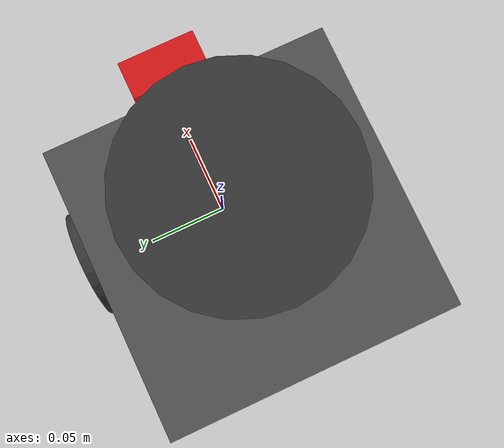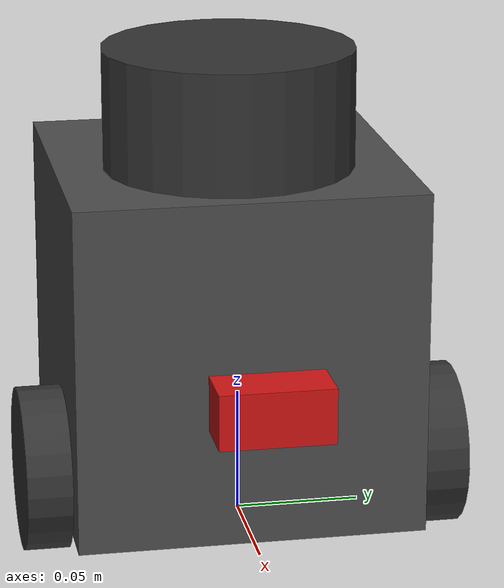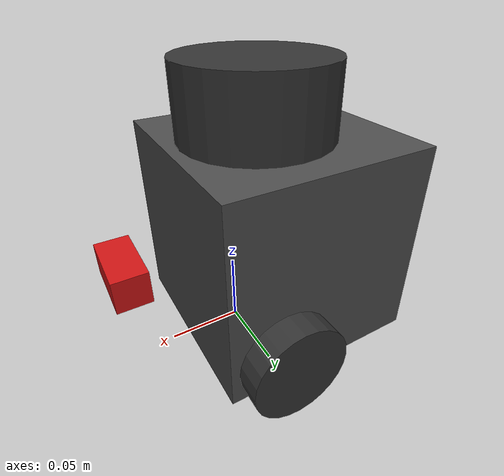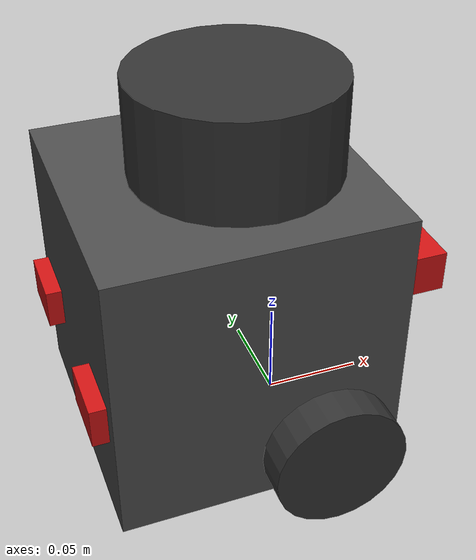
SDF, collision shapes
<?xml version="1.0" ?>
<sdf version="1.7">
  <model name="turtlebot3_burger_ir">
    <pose>0.0 0.0 0.0 0.0 0.0 0.0</pose>

    <link name="base_footprint"/>

    <link name="base_link">

      <inertial>
        <pose>-0.064 0 0.070 0 0 0</pose>
        <inertia>
          <ixx>1.9527e-02</ixx>
          <ixy>0</ixy>
          <ixz>0</ixz>
          <iyy>1.9527e-02</iyy>
          <iyz>0</iyz>
          <izz>1.9527e-02</izz>
        </inertia>
        <mass>8.2573504e-01</mass>
      </inertial>

      <collision name="base_collision">
        <pose>-0.032 0 0.070 0 0 0</pose>
        <geometry>
          <box>
            <size>0.14 0.14 0.14</size>
          </box>
        </geometry>
      </collision>

      <visual name="base_visual">
        <pose>-0.032 0 0 0 0 0</pose>
        <geometry>
          <mesh>
            <uri>model://turtlebot3_common/meshes/bases/burger_base.stl</uri>
            <scale>0.001 0.001 0.001</scale>
          </mesh>
        </geometry>
        <material>
          <ambient>0.3 0.3 0.3 1.0</ambient>
          <diffuse>0.3 0.3 0.3 1.0</diffuse>
        </material>
      </visual>

      <visual name="visibility_shell">
        <pose>-0.010 0 0.275 0 0 0</pose>
        <geometry>
          <cylinder>
            <radius>0.225</radius>
            <length>0.510</length>
          </cylinder>
        </geometry>
        <material>
          <ambient>0.88 0.30 0.08 1.0</ambient>
          <diffuse>0.95 0.38 0.10 1.0</diffuse>
          <specular>0.15 0.15 0.15 1.0</specular>
        </material>
      </visual>

      <visual name="top_marker">
        <pose>0.030 0 0.605 0 0 0</pose>
        <geometry>
          <box>
            <size>0.25 0.18 0.11</size>
          </box>
        </geometry>
        <material>
          <ambient>0.08 0.16 0.85 1.0</ambient>
          <diffuse>0.12 0.22 0.95 1.0</diffuse>
          <specular>0.10 0.10 0.10 1.0</specular>
        </material>
      </visual>

      <visual name="head_marker">
        <pose>0.030 0 0.780 0 0 0</pose>
        <geometry>
          <cylinder>
            <radius>0.140</radius>
            <length>0.140</length>
          </cylinder>
        </geometry>
        <material>
          <ambient>0.92 0.92 0.94 1.0</ambient>
          <diffuse>0.96 0.96 0.98 1.0</diffuse>
          <specular>0.18 0.18 0.18 1.0</specular>
        </material>
      </visual>

      <visual name="led_seg_00">
        <pose>0.205000 0.000000 0.865000 0 0 1.570796</pose>
        <geometry>
          <box>
            <size>0.034 0.015 0.012</size>
          </box>
        </geometry>
        <material>
          <ambient>0.010 0.010 0.010 1.0</ambient>
          <diffuse>0.018 0.018 0.018 1.0</diffuse>
          <emissive>0.000 0.000 0.000 1.0</emissive>
          <specular>0.020 0.020 0.020 1.0</specular>
        </material>
      </visual>
      <visual name="led_seg_01">
        <pose>0.199502 0.032330 0.865000 0 0 1.822124</pose>
        <geometry>
          <box>
            <size>0.034 0.015 0.012</size>
          </box>
        </geometry>
        <material>
          <ambient>0.010 0.010 0.010 1.0</ambient>
          <diffuse>0.018 0.018 0.018 1.0</diffuse>
          <emissive>0.000 0.000 0.000 1.0</emissive>
          <specular>0.020 0.020 0.020 1.0</specular>
        </material>
      </visual>
      <visual name="led_seg_02">
        <pose>0.183354 0.062628 0.865000 0 0 2.073451</pose>
        <geometry>
          <box>
            <size>0.034 0.015 0.012</size>
          </box>
        </geometry>
        <material>
          <ambient>0.010 0.010 0.010 1.0</ambient>
          <diffuse>0.018 0.018 0.018 1.0</diffuse>
          <emissive>0.000 0.000 0.000 1.0</emissive>
          <specular>0.020 0.020 0.020 1.0</specular>
        </material>
      </visual>
      <visual name="led_seg_03">
        <pose>0.157570 0.088991 0.865000 0 0 2.324779</pose>
        <geometry>
          <box>
            <size>0.034 0.015 0.012</size>
          </box>
        </geometry>
        <material>
          <ambient>0.010 0.010 0.010 1.0</ambient>
          <diffuse>0.018 0.018 0.018 1.0</diffuse>
          <emissive>0.000 0.000 0.000 1.0</emissive>
          <specular>0.020 0.020 0.020 1.0</specular>
        </material>
      </visual>
      <visual name="led_seg_04">
        <pose>0.123770 0.109763 0.865000 0 0 2.576106</pose>
        <geometry>
          <box>
            <size>0.034 0.015 0.012</size>
          </box>
        </geometry>
        <material>
          <ambient>0.010 0.010 0.010 1.0</ambient>
          <diffuse>0.018 0.018 0.018 1.0</diffuse>
          <emissive>0.000 0.000 0.000 1.0</emissive>
          <specular>0.020 0.020 0.020 1.0</specular>
        </material>
      </visual>
      <visual name="led_seg_05">
        <pose>0.084078 0.123637 0.865000 0 0 2.827433</pose>
        <geometry>
          <box>
            <size>0.034 0.015 0.012</size>
          </box>
        </geometry>
        <material>
          <ambient>0.010 0.010 0.010 1.0</ambient>
          <diffuse>0.018 0.018 0.018 1.0</diffuse>
          <emissive>0.000 0.000 0.000 1.0</emissive>
          <specular>0.020 0.020 0.020 1.0</specular>
        </material>
      </visual>
      <visual name="led_seg_06">
        <pose>0.040988 0.129743 0.865000 0 0 3.078761</pose>
        <geometry>
          <box>
            <size>0.034 0.015 0.012</size>
          </box>
        </geometry>
        <material>
          <ambient>0.010 0.010 0.010 1.0</ambient>
          <diffuse>0.018 0.018 0.018 1.0</diffuse>
          <emissive>0.000 0.000 0.000 1.0</emissive>
          <specular>0.020 0.020 0.020 1.0</specular>
        </material>
      </visual>
      <visual name="led_seg_07">
        <pose>-0.002792 0.127697 0.865000 0 0 3.330088</pose>
        <geometry>
          <box>
            <size>0.034 0.015 0.012</size>
          </box>
        </geometry>
        <material>
          <ambient>0.010 0.010 0.010 1.0</ambient>
          <diffuse>0.018 0.018 0.018 1.0</diffuse>
          <emissive>0.000 0.000 0.000 1.0</emissive>
          <specular>0.020 0.020 0.020 1.0</specular>
        </material>
      </visual>
      <visual name="led_seg_08">
        <pose>-0.044511 0.117628 0.865000 0 0 3.581416</pose>
        <geometry>
          <box>
            <size>0.034 0.015 0.012</size>
          </box>
        </geometry>
        <material>
          <ambient>0.010 0.010 0.010 1.0</ambient>
          <diffuse>0.018 0.018 0.018 1.0</diffuse>
          <emissive>0.000 0.000 0.000 1.0</emissive>
          <specular>0.020 0.020 0.020 1.0</specular>
        </material>
      </visual>
      <visual name="led_seg_09">
        <pose>-0.081549 0.100167 0.865000 0 0 3.832743</pose>
        <geometry>
          <box>
            <size>0.034 0.015 0.012</size>
          </box>
        </geometry>
        <material>
          <ambient>0.010 0.010 0.010 1.0</ambient>
          <diffuse>0.018 0.018 0.018 1.0</diffuse>
          <emissive>0.000 0.000 0.000 1.0</emissive>
          <specular>0.020 0.020 0.020 1.0</specular>
        </material>
      </visual>
      <visual name="led_seg_10">
        <pose>-0.111578 0.076412 0.865000 0 0 4.084070</pose>
        <geometry>
          <box>
            <size>0.034 0.015 0.012</size>
          </box>
        </geometry>
        <material>
          <ambient>0.010 0.010 0.010 1.0</ambient>
          <diffuse>0.018 0.018 0.018 1.0</diffuse>
          <emissive>0.000 0.000 0.000 1.0</emissive>
          <specular>0.020 0.020 0.020 1.0</specular>
        </material>
      </visual>
      <visual name="led_seg_11">
        <pose>-0.132711 0.047856 0.865000 0 0 4.335398</pose>
        <geometry>
          <box>
            <size>0.034 0.015 0.012</size>
          </box>
        </geometry>
        <material>
          <ambient>0.010 0.010 0.010 1.0</ambient>
          <diffuse>0.018 0.018 0.018 1.0</diffuse>
          <emissive>0.000 0.000 0.000 1.0</emissive>
          <specular>0.020 0.020 0.020 1.0</specular>
        </material>
      </visual>
      <visual name="led_seg_12">
        <pose>-0.143620 0.016293 0.865000 0 0 4.586725</pose>
        <geometry>
          <box>
            <size>0.034 0.015 0.012</size>
          </box>
        </geometry>
        <material>
          <ambient>0.010 0.010 0.010 1.0</ambient>
          <diffuse>0.018 0.018 0.018 1.0</diffuse>
          <emissive>0.000 0.000 0.000 1.0</emissive>
          <specular>0.020 0.020 0.020 1.0</specular>
        </material>
      </visual>
      <visual name="led_seg_13">
        <pose>-0.143620 -0.016293 0.865000 0 0 4.838053</pose>
        <geometry>
          <box>
            <size>0.034 0.015 0.012</size>
          </box>
        </geometry>
        <material>
          <ambient>0.010 0.010 0.010 1.0</ambient>
          <diffuse>0.018 0.018 0.018 1.0</diffuse>
          <emissive>0.000 0.000 0.000 1.0</emissive>
          <specular>0.020 0.020 0.020 1.0</specular>
        </material>
      </visual>
      <visual name="led_seg_14">
        <pose>-0.132711 -0.047856 0.865000 0 0 5.089380</pose>
        <geometry>
          <box>
            <size>0.034 0.015 0.012</size>
          </box>
        </geometry>
        <material>
          <ambient>0.010 0.010 0.010 1.0</ambient>
          <diffuse>0.018 0.018 0.018 1.0</diffuse>
          <emissive>0.000 0.000 0.000 1.0</emissive>
          <specular>0.020 0.020 0.020 1.0</specular>
        </material>
      </visual>
      <visual name="led_seg_15">
        <pose>-0.111578 -0.076412 0.865000 0 0 5.340708</pose>
        <geometry>
          <box>
            <size>0.034 0.015 0.012</size>
          </box>
        </geometry>
        <material>
          <ambient>0.010 0.010 0.010 1.0</ambient>
          <diffuse>0.018 0.018 0.018 1.0</diffuse>
          <emissive>0.000 0.000 0.000 1.0</emissive>
          <specular>0.020 0.020 0.020 1.0</specular>
        </material>
      </visual>
      <visual name="led_seg_16">
        <pose>-0.081549 -0.100167 0.865000 0 0 5.592035</pose>
        <geometry>
          <box>
            <size>0.034 0.015 0.012</size>
          </box>
        </geometry>
        <material>
          <ambient>0.010 0.010 0.010 1.0</ambient>
          <diffuse>0.018 0.018 0.018 1.0</diffuse>
          <emissive>0.000 0.000 0.000 1.0</emissive>
          <specular>0.020 0.020 0.020 1.0</specular>
        </material>
      </visual>
      <visual name="led_seg_17">
        <pose>-0.044511 -0.117628 0.865000 0 0 5.843362</pose>
        <geometry>
          <box>
            <size>0.034 0.015 0.012</size>
          </box>
        </geometry>
        <material>
          <ambient>0.010 0.010 0.010 1.0</ambient>
          <diffuse>0.018 0.018 0.018 1.0</diffuse>
          <emissive>0.000 0.000 0.000 1.0</emissive>
          <specular>0.020 0.020 0.020 1.0</specular>
        </material>
      </visual>
      <visual name="led_seg_18">
        <pose>-0.002792 -0.127697 0.865000 0 0 6.094690</pose>
        <geometry>
          <box>
            <size>0.034 0.015 0.012</size>
          </box>
        </geometry>
        <material>
          <ambient>0.010 0.010 0.010 1.0</ambient>
          <diffuse>0.018 0.018 0.018 1.0</diffuse>
          <emissive>0.000 0.000 0.000 1.0</emissive>
          <specular>0.020 0.020 0.020 1.0</specular>
        </material>
      </visual>
      <visual name="led_seg_19">
        <pose>0.040988 -0.129743 0.865000 0 0 6.346017</pose>
        <geometry>
          <box>
            <size>0.034 0.015 0.012</size>
          </box>
        </geometry>
        <material>
          <ambient>0.010 0.010 0.010 1.0</ambient>
          <diffuse>0.018 0.018 0.018 1.0</diffuse>
          <emissive>0.000 0.000 0.000 1.0</emissive>
          <specular>0.020 0.020 0.020 1.0</specular>
        </material>
      </visual>
      <visual name="led_seg_20">
        <pose>0.084078 -0.123637 0.865000 0 0 6.597345</pose>
        <geometry>
          <box>
            <size>0.034 0.015 0.012</size>
          </box>
        </geometry>
        <material>
          <ambient>0.010 0.010 0.010 1.0</ambient>
          <diffuse>0.018 0.018 0.018 1.0</diffuse>
          <emissive>0.000 0.000 0.000 1.0</emissive>
          <specular>0.020 0.020 0.020 1.0</specular>
        </material>
      </visual>
      <visual name="led_seg_21">
        <pose>0.123770 -0.109763 0.865000 0 0 6.848672</pose>
        <geometry>
          <box>
            <size>0.034 0.015 0.012</size>
          </box>
        </geometry>
        <material>
          <ambient>0.010 0.010 0.010 1.0</ambient>
          <diffuse>0.018 0.018 0.018 1.0</diffuse>
          <emissive>0.000 0.000 0.000 1.0</emissive>
          <specular>0.020 0.020 0.020 1.0</specular>
        </material>
      </visual>
      <visual name="led_seg_22">
        <pose>0.157570 -0.088991 0.865000 0 0 7.099999</pose>
        <geometry>
          <box>
            <size>0.034 0.015 0.012</size>
          </box>
        </geometry>
        <material>
          <ambient>0.010 0.010 0.010 1.0</ambient>
          <diffuse>0.018 0.018 0.018 1.0</diffuse>
          <emissive>0.000 0.000 0.000 1.0</emissive>
          <specular>0.020 0.020 0.020 1.0</specular>
        </material>
      </visual>
      <visual name="led_seg_23">
        <pose>0.183354 -0.062628 0.865000 0 0 7.351327</pose>
        <geometry>
          <box>
            <size>0.034 0.015 0.012</size>
          </box>
        </geometry>
        <material>
          <ambient>0.010 0.010 0.010 1.0</ambient>
          <diffuse>0.018 0.018 0.018 1.0</diffuse>
          <emissive>0.000 0.000 0.000 1.0</emissive>
          <specular>0.020 0.020 0.020 1.0</specular>
        </material>
      </visual>
      <visual name="led_seg_24">
        <pose>0.199502 -0.032330 0.865000 0 0 7.602654</pose>
        <geometry>
          <box>
            <size>0.034 0.015 0.012</size>
          </box>
        </geometry>
        <material>
          <ambient>0.010 0.010 0.010 1.0</ambient>
          <diffuse>0.018 0.018 0.018 1.0</diffuse>
          <emissive>0.000 0.000 0.000 1.0</emissive>
          <specular>0.020 0.020 0.020 1.0</specular>
        </material>
      </visual>
    </link>

    <link name="imu_link">
      <sensor name="tb3_imu" type="imu">
        <always_on>true</always_on>
        <update_rate>200</update_rate>
        <topic>imu</topic>
        <imu>
          <angular_velocity>
            <x>
              <noise type="gaussian">
                <mean>0.0</mean>
                <stddev>2e-4</stddev>
              </noise>
            </x>
            <y>
              <noise type="gaussian">
                <mean>0.0</mean>
                <stddev>2e-4</stddev>
              </noise>
            </y>
            <z>
              <noise type="gaussian">
                <mean>0.0</mean>
                <stddev>2e-4</stddev>
              </noise>
            </z>
          </angular_velocity>
          <linear_acceleration>
            <x>
              <noise type="gaussian">
                <mean>0.0</mean>
                <stddev>1.7e-2</stddev>
              </noise>
            </x>
            <y>
              <noise type="gaussian">
                <mean>0.0</mean>
                <stddev>1.7e-2</stddev>
              </noise>
            </y>
            <z>
              <noise type="gaussian">
                <mean>0.0</mean>
                <stddev>1.7e-2</stddev>
              </noise>
            </z>
          </linear_acceleration>
        </imu>
      </sensor>
    </link>

    <link name="base_scan">
      <inertial>
        <pose>-0.020 0 0.161 0 0 0</pose>
        <inertia>
          <ixx>0.0001</ixx>
          <ixy>0.000</ixy>
          <ixz>0.000</ixz>
          <iyy>0.0001</iyy>
          <iyz>0.000</iyz>
          <izz>0.0001</izz>
        </inertia>
        <mass>0.114</mass>
      </inertial>

      <collision name="lidar_sensor_collision">
        <pose>-0.020 0 0.161 0 0 0</pose>
        <geometry>
          <cylinder>
            <radius>0.0508</radius>
            <length>0.055</length>
          </cylinder>
        </geometry>
      </collision>

      <visual name="lidar_sensor_visual">
        <pose>-0.032 0 0.171 0 0 0</pose>
        <geometry>
          <mesh>
            <uri>model://turtlebot3_common/meshes/sensors/lds.stl</uri>
            <scale>0.001 0.001 0.001</scale>
          </mesh>
        </geometry>
        <material>
          <ambient>0.2 0.2 0.2 1.0</ambient>
          <diffuse>0.2 0.2 0.2 1.0</diffuse>
        </material>
      </visual>

      <sensor name="hls_lfcd_lds" type="ray">
        <always_on>true</always_on>
        <visualize>true</visualize>
        <pose>-0.032 0 0.171 0 0 0</pose>
        <update_rate>5</update_rate>
        <topic>scan</topic>
        <ray>
          <scan>
            <horizontal>
              <samples>360</samples>
              <resolution>1.000000</resolution>
              <min_angle>0.000000</min_angle>
              <max_angle>6.280000</max_angle>
            </horizontal>
          </scan>
          <range>
            <min>0.120000</min>
            <max>3.5</max>
            <resolution>0.015000</resolution>
          </range>
          <noise>
            <type>gaussian</type>
            <mean>0.0</mean>
            <stddev>0.01</stddev>
          </noise>
        </ray>
      </sensor>
    </link>

    <link name="front_ir_link">
      <pose>0.075 0.0 0.070 0 0 0</pose>
      <collision name="front_ir_collision">
        <geometry>
          <box>
            <size>0.022 0.045 0.022</size>
          </box>
        </geometry>
      </collision>
      <visual name="front_ir_visual">
        <geometry>
          <box>
            <size>0.022 0.045 0.022</size>
          </box>
        </geometry>
        <material>
          <ambient>0.45 0.04 0.04 1</ambient>
          <diffuse>0.82 0.08 0.08 1</diffuse>
          <emissive>0.16 0.01 0.01 1</emissive>
        </material>
      </visual>
      <sensor name="front_infrared_sensor" type="ray">
        <pose>0.011 0 0 0 0 0</pose>
        <always_on>true</always_on>
        <update_rate>15</update_rate>
        <visualize>true</visualize>
        <topic>front_infrared</topic>
        <ray>
          <scan>
            <horizontal>
              <samples>7</samples>
              <resolution>1</resolution>
              <min_angle>-0.12</min_angle>
              <max_angle>0.12</max_angle>
            </horizontal>
          </scan>
          <range>
            <min>0.03</min>
            <max>1.00</max>
            <resolution>0.01</resolution>
          </range>
        </ray>
      </sensor>
    </link>

    <link name="rear_left_ir_link">
      <pose>-0.10 0.045 0.060 0 0 3.141593</pose>
      <collision name="rear_left_ir_collision">
        <geometry>
          <box>
            <size>0.020 0.032 0.020</size>
          </box>
        </geometry>
      </collision>
      <visual name="rear_left_ir_visual">
        <geometry>
          <box>
            <size>0.020 0.032 0.020</size>
          </box>
        </geometry>
        <material>
          <ambient>0.45 0.04 0.04 1</ambient>
          <diffuse>0.82 0.08 0.08 1</diffuse>
          <emissive>0.12 0.01 0.01 1</emissive>
        </material>
      </visual>
      <sensor name="rear_left_infrared_sensor" type="ray">
        <pose>0.010 0 0 0 0 0</pose>
        <always_on>true</always_on>
        <update_rate>10</update_rate>
        <visualize>true</visualize>
        <topic>rear_left_infrared</topic>
        <ray>
          <scan>
            <horizontal>
              <samples>5</samples>
              <resolution>1</resolution>
              <min_angle>-0.20</min_angle>
              <max_angle>0.20</max_angle>
            </horizontal>
          </scan>
          <range>
            <min>0.03</min>
            <max>0.80</max>
            <resolution>0.01</resolution>
          </range>
        </ray>
      </sensor>
    </link>

    <link name="rear_right_ir_link">
      <pose>-0.10 -0.045 0.060 0 0 3.141593</pose>
      <collision name="rear_right_ir_collision">
        <geometry>
          <box>
            <size>0.020 0.032 0.020</size>
          </box>
        </geometry>
      </collision>
      <visual name="rear_right_ir_visual">
        <geometry>
          <box>
            <size>0.020 0.032 0.020</size>
          </box>
        </geometry>
        <material>
          <ambient>0.45 0.04 0.04 1</ambient>
          <diffuse>0.82 0.08 0.08 1</diffuse>
          <emissive>0.12 0.01 0.01 1</emissive>
        </material>
      </visual>
      <sensor name="rear_right_infrared_sensor" type="ray">
        <pose>0.010 0 0 0 0 0</pose>
        <always_on>true</always_on>
        <update_rate>10</update_rate>
        <visualize>true</visualize>
        <topic>rear_right_infrared</topic>
        <ray>
          <scan>
            <horizontal>
              <samples>5</samples>
              <resolution>1</resolution>
              <min_angle>-0.20</min_angle>
              <max_angle>0.20</max_angle>
            </horizontal>
          </scan>
          <range>
            <min>0.03</min>
            <max>0.80</max>
            <resolution>0.01</resolution>
          </range>
        </ray>
      </sensor>
    </link>

    <link name="wheel_left_link">

      <inertial>
        <pose>0 0.08 0.023 -1.57 0 0</pose>
        <inertia>
          <ixx>5.445e-05</ixx>
          <ixy>0</ixy>
          <ixz>0</ixz>
          <iyy>5.445e-05</iyy>
          <iyz>0</iyz>
          <izz>1.089e-04</izz>
        </inertia>
        <mass>0.1</mass>
      </inertial>

      <collision name="wheel_left_collision">
        <pose>0 0.08 0.023 -1.57 0 0</pose>
        <geometry>
          <cylinder>
            <radius>0.033</radius>
            <length>0.018</length>
          </cylinder>
        </geometry>
        <surface>
          <!-- This friction pamareter don't contain reliable data!! -->
          <friction>
            <ode>
              <mu>100000.0</mu>
              <mu2>100000.0</mu2>
              <fdir1>0 0 0</fdir1>
              <slip1>0.0</slip1>
              <slip2>0.0</slip2>
            </ode>
          </friction>
          <contact>
            <ode>
              <soft_cfm>0</soft_cfm>
              <soft_erp>0.2</soft_erp>
              <kp>1e+5</kp>
              <kd>1</kd>
              <max_vel>0.01</max_vel>
              <min_depth>0.001</min_depth>
            </ode>
          </contact>
        </surface>
      </collision>

      <visual name="wheel_left_visual">
        <pose>0 0.08 0.023 0 0 0</pose>
        <geometry>
          <mesh>
            <uri>model://turtlebot3_common/meshes/wheels/left_tire.stl</uri>
            <scale>0.001 0.001 0.001</scale>
          </mesh>
        </geometry>
        <material>
          <ambient>0.2 0.2 0.2 1.0</ambient>
          <diffuse>0.2 0.2 0.2 1.0</diffuse>
        </material>
      </visual>
    </link>

    <link name="wheel_right_link">

      <inertial>
        <pose>0.0 -0.08 0.023 -1.57 0 0</pose>
        <inertia>
          <ixx>5.445e-05</ixx>
          <ixy>0</ixy>
          <ixz>0</ixz>
          <iyy>5.445e-05</iyy>
          <iyz>0</iyz>
          <izz>1.089e-04</izz>
        </inertia>
        <mass>0.1</mass>
      </inertial>

      <collision name="wheel_right_collision">
        <pose>0.0 -0.08 0.023 -1.57 0 0</pose>
        <geometry>
          <cylinder>
            <radius>0.033</radius>
            <length>0.018</length>
          </cylinder>
        </geometry>
        <surface>
          <!-- This friction pamareter don't contain reliable data!! -->
          <friction>
            <ode>
              <mu>100000.0</mu>
              <mu2>100000.0</mu2>
              <fdir1>0 0 0</fdir1>
              <slip1>0.0</slip1>
              <slip2>0.0</slip2>
            </ode>
          </friction>
          <contact>
            <ode>
              <soft_cfm>0</soft_cfm>
              <soft_erp>0.2</soft_erp>
              <kp>1e+5</kp>
              <kd>1</kd>
              <max_vel>0.01</max_vel>
              <min_depth>0.001</min_depth>
            </ode>
          </contact>
        </surface>
      </collision>

      <visual name="wheel_right_visual">
        <pose>0.0 -0.08 0.023 0 0 0</pose>
        <geometry>
          <mesh>
            <uri>model://turtlebot3_common/meshes/wheels/right_tire.stl</uri>
            <scale>0.001 0.001 0.001</scale>
          </mesh>
        </geometry>
        <material>
          <ambient>0.2 0.2 0.2 1.0</ambient>
          <diffuse>0.2 0.2 0.2 1.0</diffuse>
        </material>
      </visual>
    </link>

    <link name='caster_back_link'>
      <pose>-0.081 0 -0.004 -1.57 0 0</pose>
      <inertial>
        <mass>0.005</mass>
        <inertia>
          <ixx>0.00001</ixx>
          <ixy>0.000</ixy>
          <ixz>0.000</ixz>
          <iyy>0.00001</iyy>
          <iyz>0.000</iyz>
          <izz>0.00001</izz>
        </inertia>
      </inertial>
      <collision name='collision'>
        <geometry>
          <sphere>
            <radius>0.005000</radius>
          </sphere>
        </geometry>
        <surface>
          <contact>
            <ode>
              <soft_cfm>0</soft_cfm>
              <soft_erp>0.2</soft_erp>
              <kp>1e+5</kp>
              <kd>1</kd>
              <max_vel>0.01</max_vel>
              <min_depth>0.001</min_depth>
            </ode>
          </contact>
        </surface>
      </collision>
    </link>

    <joint name="base_joint" type="fixed">
      <parent>base_footprint</parent>
      <child>base_link</child>
      <pose>0.0 0.0 0.010 0 0 0</pose>
    </joint>

    <joint name="wheel_left_joint" type="revolute">
      <parent>base_link</parent>
      <child>wheel_left_link</child>
      <pose>0.0 0.08 0.023 -1.57 0 0</pose>
      <axis>
        <xyz>0 0 1</xyz>
        <limit>
          <effort>20</effort>
        </limit>
      </axis>
    </joint>

    <joint name="wheel_right_joint" type="revolute">
      <parent>base_link</parent>
      <child>wheel_right_link</child>
      <pose>0.0 -0.08 0.023 -1.57 0 0</pose>
      <axis>
        <xyz>0 0 1</xyz>
        <limit>
          <effort>20</effort>
        </limit>
      </axis>
    </joint>

    <joint name='caster_back_joint' type='ball'>
      <parent>base_link</parent>
      <child>caster_back_link</child>
    </joint>

    <joint name="imu_joint" type="fixed">
      <parent>base_link</parent>
      <child>imu_link</child>
      <pose>-0.032 0 0.068 0 0 0</pose>
      <axis>
        <xyz>0 0 1</xyz>
      </axis>
    </joint>

    <joint name="lidar_joint" type="fixed">
      <parent>base_link</parent>
      <child>base_scan</child>
      <pose>-0.032 0 0.171 0 0 0</pose>
      <axis>
        <xyz>0 0 1</xyz>
      </axis>
    </joint>

    <joint name="front_ir_joint" type="fixed">
      <parent>base_link</parent>
      <child>front_ir_link</child>
    </joint>

    <joint name="rear_left_ir_joint" type="fixed">
      <parent>base_link</parent>
      <child>rear_left_ir_link</child>
    </joint>

    <joint name="rear_right_ir_joint" type="fixed">
      <parent>base_link</parent>
      <child>rear_right_ir_link</child>
    </joint>

    <plugin
      filename="gz-sim-diff-drive-system"
      name="gz::sim::systems::DiffDrive">
      <left_joint>wheel_left_joint</left_joint>
      <right_joint>wheel_right_joint</right_joint>
      <wheel_separation>0.16</wheel_separation>
      <wheel_radius>0.033</wheel_radius>
      <odom_publish_frequency>20</odom_publish_frequency>
      <topic>cmd_vel</topic>
      <max_linear_acceleration>1.2</max_linear_acceleration>
      <min_linear_acceleration>-1.2</min_linear_acceleration>
      <max_angular_acceleration>2.5</max_angular_acceleration>
      <min_angular_acceleration>-2.5</min_angular_acceleration>
      <max_linear_velocity>0.6</max_linear_velocity>
      <min_linear_velocity>-0.4</min_linear_velocity>
      <max_angular_velocity>2.0</max_angular_velocity>
      <min_angular_velocity>-2.0</min_angular_velocity>
    </plugin>

    <plugin
      filename="libhmi_led_ring_system.so"
      name="hmi::gazebo::LedRingSystem">
      <topic>/hmi/visual/led_mode</topic>
      <segment_prefix>led_seg_</segment_prefix>
      <segment_count>25</segment_count>
    </plugin>

  </model>
</sdf>
